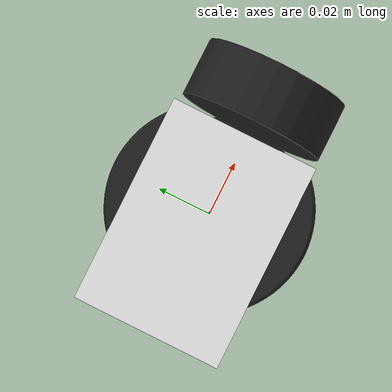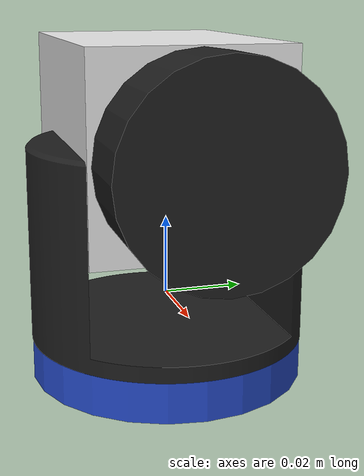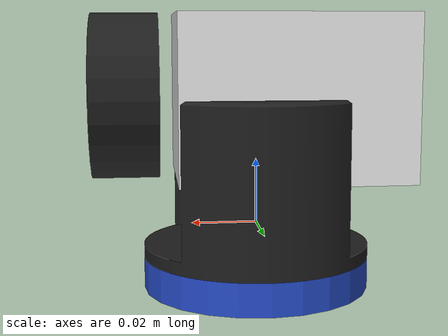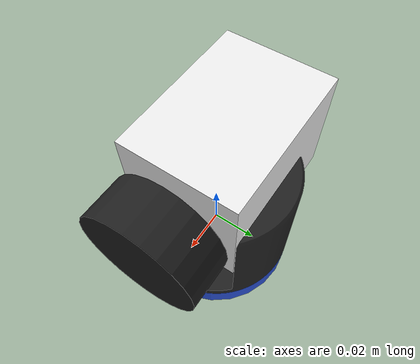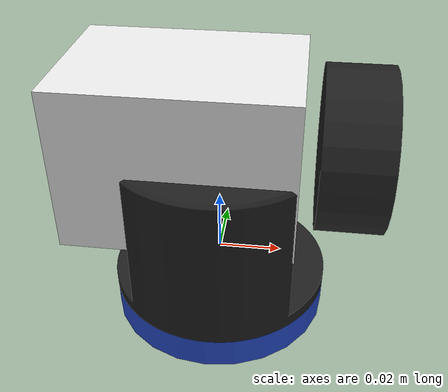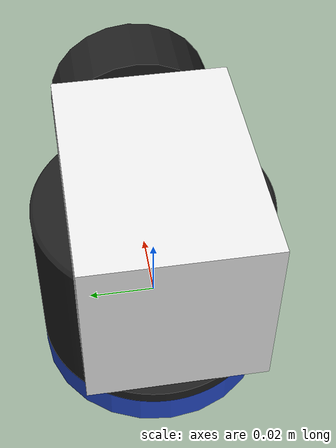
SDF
<?xml version='1.0'?>
<sdf version='1.7'>
  <model name='pt_base'>
    <link name='PT_Base_Lower'>
      <inertial>
        <mass>0.01</mass>
        <inertia>
          <ixx>3.15e-06</ixx>
          <ixy>0</ixy>
          <ixz>0</ixz>
          <iyy>3.15e-06</iyy>
          <iyz>0</iyz>
          <izz>6.13e-06</izz>
        </inertia>
        <pose>0 0 0 0 -0 0</pose>
      </inertial>
      <pose>0 0 -0.015 0 -0 0</pose>
      <gravity>1</gravity>
      <self_collide>0</self_collide>
      <kinematic>0</kinematic>
      <enable_wind>0</enable_wind>
      <visual name='visual'>
        <pose>0 0 0 0 -0 0</pose>
        <geometry>
          <cylinder>
            <radius>0.035</radius>
            <length>0.01</length>
          </cylinder>
        </geometry>
        <material>
          <lighting>1</lighting>
          <script>
            <uri>file://media/materials/scripts/gazebo.material</uri>
            <name>Gazebo/Blue</name>
          </script>
          <shader type='pixel'>
            <normal_map>__default__</normal_map>
          </shader>
        </material>
        <transparency>0</transparency>
        <cast_shadows>1</cast_shadows>
      </visual>
      <collision name='collision'>
        <laser_retro>0</laser_retro>
        <max_contacts>10</max_contacts>
        <pose>0 0 0 0 -0 0</pose>
        <geometry>
          <cylinder>
            <radius>0.035</radius>
            <length>0.01</length>
          </cylinder>
        </geometry>
        <surface>
          <friction>
            <ode>
              <mu>1</mu>
              <mu2>1</mu2>
              <fdir1>0 0 0</fdir1>
              <slip1>0</slip1>
              <slip2>0</slip2>
            </ode>
            <torsional>
              <coefficient>1</coefficient>
              <patch_radius>0</patch_radius>
              <surface_radius>0</surface_radius>
              <use_patch_radius>1</use_patch_radius>
              <ode>
                <slip>0</slip>
              </ode>
            </torsional>
          </friction>
          <bounce>
            <restitution_coefficient>0</restitution_coefficient>
            <threshold>1e+06</threshold>
          </bounce>
          <contact>
            <collide_without_contact>0</collide_without_contact>
            <collide_without_contact_bitmask>1</collide_without_contact_bitmask>
            <collide_bitmask>1</collide_bitmask>
            <ode>
              <soft_cfm>0</soft_cfm>
              <soft_erp>0.2</soft_erp>
              <kp>1e+13</kp>
              <kd>1</kd>
              <max_vel>0.01</max_vel>
              <min_depth>0</min_depth>
            </ode>
            <bullet>
              <split_impulse>1</split_impulse>
              <split_impulse_penetration_threshold>-0.01</split_impulse_penetration_threshold>
              <soft_cfm>0</soft_cfm>
              <soft_erp>0.2</soft_erp>
              <kp>1e+13</kp>
              <kd>1</kd>
            </bullet>
          </contact>
        </surface>
      </collision>
    </link>
    <link name='PT_Base_Upper'>
      <inertial>
        <mass>0.1</mass>
        <inertia>
          <ixx>5.146e-05</ixx>
          <ixy>0</ixy>
          <ixz>0</ixz>
          <iyy>5.146e-05</iyy>
          <iyz>0</iyz>
          <izz>6.125e-05</izz>
        </inertia>
        <pose>0 0 0 0 -0 0</pose>
      </inertial>
      <pose>0 0 0.015 0 -0 0</pose>
      <gravity>1</gravity>
      <self_collide>0</self_collide>
      <kinematic>0</kinematic>
      <enable_wind>0</enable_wind>
      <visual name='visual'>
        <pose>0 0 0 0 -0 0</pose>
        <geometry>
          <mesh>
            <uri>model://pt_base/PT_Base_Upper.dae</uri>
          </mesh>
        </geometry>
        <material>
          <lighting>1</lighting>
          <script>
            <uri>file://media/materials/scripts/gazebo.material</uri>
            <name>Gazebo/Black</name>
          </script>
          <shader type='pixel'>
            <normal_map>__default__</normal_map>
          </shader>
        </material>
        <transparency>0</transparency>
        <cast_shadows>1</cast_shadows>
      </visual>
      <collision name='collision'>
        <laser_retro>0</laser_retro>
        <max_contacts>10</max_contacts>
        <pose>0 0 0 0 -0 0</pose>
        <geometry>
          <cylinder>
            <radius>0.035</radius>
            <length>0.05</length>
          </cylinder>
        </geometry>
        <surface>
          <friction>
            <ode>
              <mu>1</mu>
              <mu2>1</mu2>
              <fdir1>0 0 0</fdir1>
              <slip1>0</slip1>
              <slip2>0</slip2>
            </ode>
            <torsional>
              <coefficient>1</coefficient>
              <patch_radius>0</patch_radius>
              <surface_radius>0</surface_radius>
              <use_patch_radius>1</use_patch_radius>
              <ode>
                <slip>0</slip>
              </ode>
            </torsional>
          </friction>
          <bounce>
            <restitution_coefficient>0</restitution_coefficient>
            <threshold>1e+06</threshold>
          </bounce>
          <contact>
            <collide_without_contact>0</collide_without_contact>
            <collide_without_contact_bitmask>1</collide_without_contact_bitmask>
            <collide_bitmask>1</collide_bitmask>
            <ode>
              <soft_cfm>0</soft_cfm>
              <soft_erp>0.2</soft_erp>
              <kp>1e+13</kp>
              <kd>1</kd>
              <max_vel>0.01</max_vel>
              <min_depth>0</min_depth>
            </ode>
            <bullet>
              <split_impulse>1</split_impulse>
              <split_impulse_penetration_threshold>-0.01</split_impulse_penetration_threshold>
              <soft_cfm>0</soft_cfm>
              <soft_erp>0.2</soft_erp>
              <kp>1e+13</kp>
              <kd>1</kd>
            </bullet>
          </contact>
        </surface>
      </collision>
    </link>
    <joint name='JOINT_PAN' type='revolute'>
      <parent>PT_Base_Lower</parent>
      <child>PT_Base_Upper</child>
      <pose>0 0 0 0 -0 0</pose>
      <axis>
        <xyz>-0 0 1</xyz>
        <limit>
          <lower>-3.14</lower>
          <upper>3.14</upper>
          <effort>-1</effort>
          <velocity>-1</velocity>
        </limit>
        <dynamics>
          <spring_reference>0</spring_reference>
          <spring_stiffness>0</spring_stiffness>
          <damping>0</damping>
        </dynamics>
      </axis>
      <physics>
        <ode>
          <limit>
            <cfm>0</cfm>
            <erp>0.2</erp>
          </limit>
          <suspension>
            <cfm>0</cfm>
            <erp>0.2</erp>
          </suspension>
        </ode>
      </physics>
    </joint>

    <link name='camera_link'>
      <audio_sink/>
      <pose>0 0 0.04 0 0 0</pose>
      <inertial>
        <mass>0.06</mass>
        <inertia>
          <ixx>2.5e-05</ixx>
          <iyy>4.45e-05</iyy>
          <izz>4.45e-05</izz>
          <ixy>0</ixy>
          <ixz>0</ixz>
          <iyz>0</iyz>
        </inertia>
        <pose>0 0 0 0 -0 0</pose>
      </inertial>
      <sensor name='camera' type='camera'>
        <update_rate>20</update_rate>
        <visualize>0</visualize>
        <camera name='camera'>
          <horizontal_fov>1.047</horizontal_fov>
          <image>
            <width>320</width>
            <height>240</height>
            <format>R8G8B8</format>
          </image>
          <clip>
            <near>0.1</near>
            <far>100</far>
          </clip>
          <noise>
            <type>gaussian</type>
            <mean>0</mean>
            <stddev>0.007</stddev>
          </noise>
        </camera>

        <plugin name="camera_controller" filename="libgazebo_ros_camera.so">
          <alwaysOn>true</alwaysOn>
          <updateRate>20.0</updateRate>
          <cameraName>camera/rgb</cameraName>
          <imageTopicName>image_raw</imageTopicName>
          <cameraInfoTopicName>camera_info</cameraInfoTopicName>
          <frameName>camera_link</frameName>
          <hackBaseline>0.07</hackBaseline>
          <distortionK1>0.0</distortionK1>
          <distortionK2>0.0</distortionK2>
          <distortionK3>0.0</distortionK3>
          <distortionT1>0.0</distortionT1>
          <distortionT2>0.0</distortionT2>
        </plugin>

      </sensor>
      <self_collide>0</self_collide>
      <enable_wind>0</enable_wind>
      <kinematic>0</kinematic>
      <gravity>1</gravity>
      <visual name='visual-box'>
        <pose>-0.01 0 0 0 -0 0</pose>
        <geometry>
          <box>
            <size>0.07 0.05 0.05</size>
          </box>
        </geometry>
        <material>
          <script>
            <uri>file://media/materials/scripts/gazebo.material</uri>
            <name>Gazebo/White</name>
          </script>
          <shader type='pixel'>
            <normal_map>__default__</normal_map>
          </shader>
        </material>
        <transparency>0</transparency>
        <cast_shadows>1</cast_shadows>
      </visual>
      <visual name='visual-lens'>
        <pose>0.04 0 0 0 1.57 0</pose>
        <geometry>
          <cylinder>
            <radius>0.025</radius>
            <length>0.02</length>
          </cylinder>
        </geometry>
        <material>
          <script>
            <uri>file://media/materials/scripts/gazebo.material</uri>
            <name>Gazebo/FlatBlack</name>
          </script>
          <shader type='pixel'>
            <normal_map>__default__</normal_map>
          </shader>
        </material>
        <transparency>0</transparency>
        <cast_shadows>1</cast_shadows>
      </visual>
      <collision name='collision-box'>
        <laser_retro>0</laser_retro>
        <max_contacts>10</max_contacts>
        <pose>-0.01 0 0 0 -0 0</pose>
        <geometry>
          <box>
            <size>0.07 0.05 0.05</size>
          </box>
        </geometry>
        <surface>
          <friction>
            <ode>
              <mu>1</mu>
              <mu2>1</mu2>
              <fdir1>0 0 0</fdir1>
              <slip1>0</slip1>
              <slip2>0</slip2>
            </ode>
            <torsional>
              <coefficient>1</coefficient>
              <patch_radius>0</patch_radius>
              <surface_radius>0</surface_radius>
              <use_patch_radius>1</use_patch_radius>
              <ode>
                <slip>0</slip>
              </ode>
            </torsional>
          </friction>
          <bounce>
            <restitution_coefficient>0</restitution_coefficient>
            <threshold>1e+06</threshold>
          </bounce>
          <contact>
            <collide_without_contact>0</collide_without_contact>
            <collide_without_contact_bitmask>1</collide_without_contact_bitmask>
            <collide_bitmask>1</collide_bitmask>
            <ode>
              <soft_cfm>0</soft_cfm>
              <soft_erp>0.2</soft_erp>
              <kp>1e+13</kp>
              <kd>1</kd>
              <max_vel>0.01</max_vel>
              <min_depth>0</min_depth>
            </ode>
            <bullet>
              <split_impulse>1</split_impulse>
              <split_impulse_penetration_threshold>-0.01</split_impulse_penetration_threshold>
              <soft_cfm>0</soft_cfm>
              <soft_erp>0.2</soft_erp>
              <kp>1e+13</kp>
              <kd>1</kd>
            </bullet>
          </contact>
        </surface>
      </collision>
      <collision name='collision-lens'>
        <laser_retro>0</laser_retro>
        <max_contacts>10</max_contacts>
        <pose>0.04 0 0 0 1.57 0</pose>
        <geometry>
          <cylinder>
            <radius>0.025</radius>
            <length>0.02</length>
          </cylinder>
        </geometry>
        <surface>
          <friction>
            <ode>
              <mu>1</mu>
              <mu2>1</mu2>
              <fdir1>0 0 0</fdir1>
              <slip1>0</slip1>
              <slip2>0</slip2>
            </ode>
            <torsional>
              <coefficient>1</coefficient>
              <patch_radius>0</patch_radius>
              <surface_radius>0</surface_radius>
              <use_patch_radius>1</use_patch_radius>
              <ode>
                <slip>0</slip>
              </ode>
            </torsional>
          </friction>
          <bounce>
            <restitution_coefficient>0</restitution_coefficient>
            <threshold>1e+06</threshold>
          </bounce>
          <contact>
            <collide_without_contact>0</collide_without_contact>
            <collide_without_contact_bitmask>1</collide_without_contact_bitmask>
            <collide_bitmask>1</collide_bitmask>
            <ode>
              <soft_cfm>0</soft_cfm>
              <soft_erp>0.2</soft_erp>
              <kp>1e+13</kp>
              <kd>1</kd>
              <max_vel>0.01</max_vel>
              <min_depth>0</min_depth>
            </ode>
            <bullet>
              <split_impulse>1</split_impulse>
              <split_impulse_penetration_threshold>-0.01</split_impulse_penetration_threshold>
              <soft_cfm>0</soft_cfm>
              <soft_erp>0.2</soft_erp>
              <kp>1e+13</kp>
              <kd>1</kd>
            </bullet>
          </contact>
        </surface>
      </collision>
    </link>

    <joint name='JOINT_TILT' type='revolute'>
      <parent>PT_Base_Upper</parent>
      <child>camera_link</child>
      <pose>0 0 0 0 0 0</pose>
      <axis>
        <xyz>-0 -1 0</xyz>
        <limit>
          <lower>-0.7</lower>
          <upper>2.27</upper>
          <effort>-1</effort>
          <velocity>-1</velocity>
        </limit>
        <dynamics>
          <spring_reference>0</spring_reference>
          <spring_stiffness>0</spring_stiffness>
          <damping>0</damping>
        </dynamics>
      </axis>
      <physics>
        <ode>
          <limit>
            <cfm>0</cfm>
            <erp>0.2</erp>
          </limit>
          <suspension>
            <cfm>0</cfm>
            <erp>0.2</erp>
          </suspension>
        </ode>
      </physics>
    </joint>

    <static>0</static>
    <allow_auto_disable>1</allow_auto_disable>

    <plugin name="gazebo_ros_pt_base_joy" filename="libgazebo_ros_pt_base_joy.so">
      <hinge_pan>JOINT_PAN</hinge_pan>
      <hinge_tilt>JOINT_TILT</hinge_tilt>
      <robotNamespace>/robot</robotNamespace>
      <gain>1.0</gain>
      <torque>100.0</torque>
      <joyTopic>/joy</joyTopic>
      <pt_baseTopic>pt_base</pt_baseTopic>
      <updateRate>100.0</updateRate>
      <axes_pan>4</axes_pan>
      <axes_tilt>5</axes_tilt>
      <button_reset_pan>12</button_reset_pan>
      <button_reset_tilt>13</button_reset_tilt>
      <scale_pan>0.1</scale_pan>
      <scale_tilt>0.1</scale_tilt>
    </plugin>

  </model>
</sdf>
